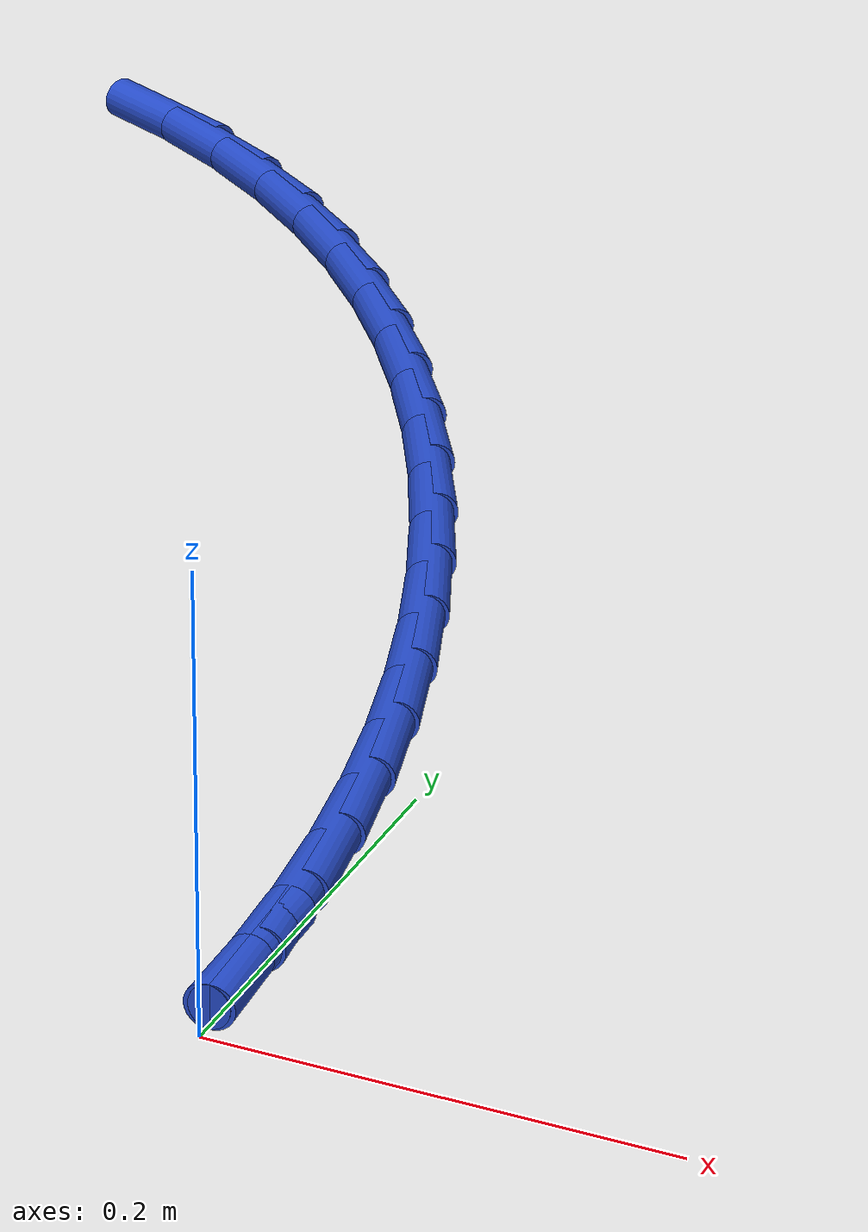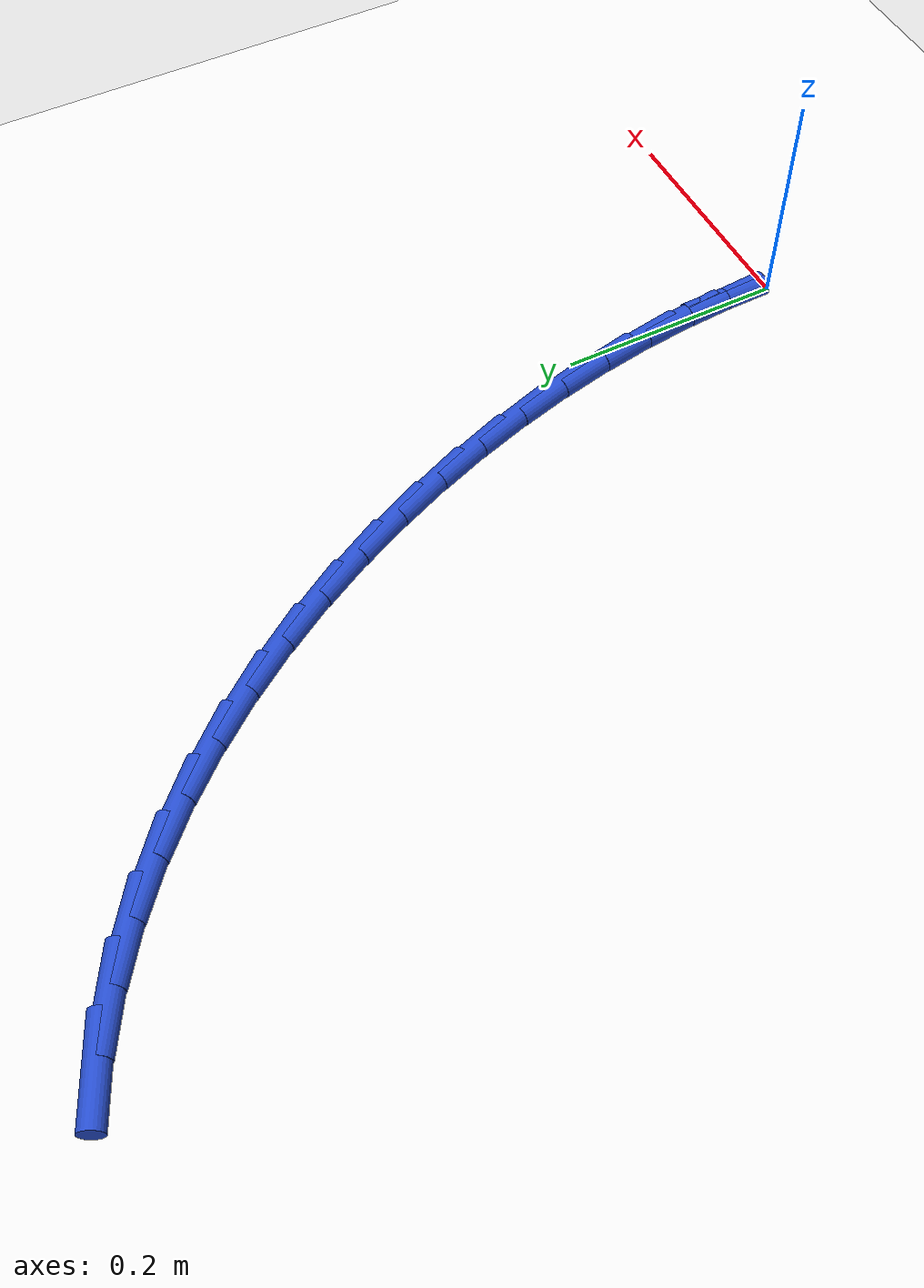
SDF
<sdf version="1.6">
 <world name="default">
  <model name="ground_plane">
   <static>1</static>
   <link name="link">
    <collision name="collision">
     <geometry><plane><normal>0 0 1</normal><size>100 100</size></plane></geometry>
     <surface><friction><ode><mu>100</mu><mu2>50</mu2></ode></friction></surface>
    </collision>
    <visual name="visual">
     <cast_shadows>0</cast_shadows>
     <geometry><plane><normal>0 0 1</normal><size>100 100</size></plane></geometry>
     <material>
      <script><uri>file://media/materials/scripts/gazebo.material</uri><name>Gazebo/WhiteGlow</name></script>
     </material>
    </visual>
   </link>
  </model>
  <model name="line">
   <link name="link_1">
    <pose>-0.0008562477940501431 0.04630962828117616 0.01 0 1.57 -1.5026158189526297</pose>
    <collision name="collision">
     <geometry><cylinder><radius>0.01</radius><length>0.08</length></cylinder></geometry>
    </collision>
    <visual name="visual">
     <material>
      <script><name>Gazebo/Blue</name><uri>file://media/materials/scripts/gazebo.material</uri></script>
     </material>
     <geometry><cylinder><radius>0.01</radius><length>0.08</length></cylinder></geometry>
    </visual>
   </link>
   <link name="link_2">
    <pose>-0.004022852722941298 0.09268207059834314 0.01 0 1.57 -1.453713289861988</pose>
    <collision name="collision">
     <geometry><cylinder><radius>0.01</radius><length>0.08</length></cylinder></geometry>
    </collision>
    <visual name="visual">
     <material>
      <script><name>Gazebo/Blue</name><uri>file://media/materials/scripts/gazebo.material</uri></script>
     </material>
     <geometry><cylinder><radius>0.01</radius><length>0.08</length></cylinder></geometry>
    </visual>
   </link>
   <link name="link_3">
    <pose>-0.009475367597711448 0.13903871682253485 0.01 0 1.57 -1.4055718458695168</pose>
    <collision name="collision">
     <geometry><cylinder><radius>0.01</radius><length>0.08</length></cylinder></geometry>
    </collision>
    <visual name="visual">
     <material>
      <script><name>Gazebo/Blue</name><uri>file://media/materials/scripts/gazebo.material</uri></script>
     </material>
     <geometry><cylinder><radius>0.01</radius><length>0.08</length></cylinder></geometry>
    </visual>
   </link>
   <link name="link_4">
    <pose>-0.017189345229398585 0.18530095682478506 0.01 0 1.57 -1.3581532531895133</pose>
    <collision name="collision">
     <geometry><cylinder><radius>0.01</radius><length>0.08</length></cylinder></geometry>
    </collision>
    <visual name="visual">
     <material>
      <script><name>Gazebo/Blue</name><uri>file://media/materials/scripts/gazebo.material</uri></script>
     </material>
     <geometry><cylinder><radius>0.01</radius><length>0.08</length></cylinder></geometry>
    </visual>
   </link>
   <link name="link_5">
    <pose>-0.027140338429040692 0.23139018047612792 0.01 0 1.57 -1.3114122756941347</pose>
    <collision name="collision">
     <geometry><cylinder><radius>0.01</radius><length>0.08</length></cylinder></geometry>
    </collision>
    <visual name="visual">
     <material>
      <script><name>Gazebo/Blue</name><uri>file://media/materials/scripts/gazebo.material</uri></script>
     </material>
     <geometry><cylinder><radius>0.01</radius><length>0.08</length></cylinder></geometry>
    </visual>
   </link>
   <link name="link_6">
    <pose>-0.039303900007675786 0.27722777764759726 0.01 0 1.57 -1.2652984080838954</pose>
    <collision name="collision">
     <geometry><cylinder><radius>0.01</radius><length>0.08</length></cylinder></geometry>
    </collision>
    <visual name="visual">
     <material>
      <script><name>Gazebo/Blue</name><uri>file://media/materials/scripts/gazebo.material</uri></script>
     </material>
     <geometry><cylinder><radius>0.01</radius><length>0.08</length></cylinder></geometry>
    </visual>
   </link>
   <link name="link_7">
    <pose>-0.053655582776341845 0.32273513821022715 0.01 0 1.57 -1.2197574620672487</pose>
    <collision name="collision">
     <geometry><cylinder><radius>0.01</radius><length>0.08</length></cylinder></geometry>
    </collision>
    <visual name="visual">
     <material>
      <script><name>Gazebo/Blue</name><uri>file://media/materials/scripts/gazebo.material</uri></script>
     </material>
     <geometry><cylinder><radius>0.01</radius><length>0.08</length></cylinder></geometry>
    </visual>
   </link>
   <link name="link_8">
    <pose>-0.0701709395460769 0.36783365203505153 0.01 0 1.57 -1.1746021792192476</pose>
    <collision name="collision">
     <geometry><cylinder><radius>0.01</radius><length>0.08</length></cylinder></geometry>
    </collision>
    <visual name="visual">
     <material>
      <script><name>Gazebo/Blue</name><uri>file://media/materials/scripts/gazebo.material</uri></script>
     </material>
     <geometry><cylinder><radius>0.01</radius><length>0.08</length></cylinder></geometry>
    </visual>
   </link>
   <link name="link_9">
    <pose>-0.08882763986999251 0.4124333776462103 0.01 0 1.57 -1.1281457233160899</pose>
    <collision name="collision">
     <geometry><cylinder><radius>0.01</radius><length>0.08</length></cylinder></geometry>
    </collision>
    <visual name="visual">
     <material>
      <script><name>Gazebo/Blue</name><uri>file://media/materials/scripts/gazebo.material</uri></script>
     </material>
     <geometry><cylinder><radius>0.01</radius><length>0.08</length></cylinder></geometry>
    </visual>
   </link>
   <link name="link_10">
    <pose>-0.10962780403747245 0.4563134838491791 0.01 0 1.57 -1.078931156878199</pose>
    <collision name="collision">
     <geometry><cylinder><radius>0.01</radius><length>0.08</length></cylinder></geometry>
    </collision>
    <visual name="visual">
     <material>
      <script><name>Gazebo/Blue</name><uri>file://media/materials/scripts/gazebo.material</uri></script>
     </material>
     <geometry><cylinder><radius>0.01</radius><length>0.08</length></cylinder></geometry>
    </visual>
   </link>
   <link name="link_11">
    <pose>-0.1325892530624173 0.4991690903070276 0.01 0 1.57 -1.0263862099845946</pose>
    <collision name="collision">
     <geometry><cylinder><radius>0.01</radius><length>0.08</length></cylinder></geometry>
    </collision>
    <visual name="visual">
     <material>
      <script><name>Gazebo/Blue</name><uri>file://media/materials/scripts/gazebo.material</uri></script>
     </material>
     <geometry><cylinder><radius>0.01</radius><length>0.08</length></cylinder></geometry>
    </visual>
   </link>
   <link name="link_12">
    <pose>-0.15773006633531272 0.540693933540897 0.01 0 1.57 -0.9699509158918701</pose>
    <collision name="collision">
     <geometry><cylinder><radius>0.01</radius><length>0.08</length></cylinder></geometry>
    </collision>
    <visual name="visual">
     <material>
      <script><name>Gazebo/Blue</name><uri>file://media/materials/scripts/gazebo.material</uri></script>
     </material>
     <geometry><cylinder><radius>0.01</radius><length>0.08</length></cylinder></geometry>
    </visual>
   </link>
   <link name="link_13">
    <pose>-0.1850683232466442 0.5805817500719277 0.01 0 1.57 -0.9090741819365421</pose>
    <collision name="collision">
     <geometry><cylinder><radius>0.01</radius><length>0.08</length></cylinder></geometry>
    </collision>
    <visual name="visual">
     <material>
      <script><name>Gazebo/Blue</name><uri>file://media/materials/scripts/gazebo.material</uri></script>
     </material>
     <geometry><cylinder><radius>0.01</radius><length>0.08</length></cylinder></geometry>
    </visual>
   </link>
   <link name="link_14">
    <pose>-0.21462210318689756 0.6185262764212612 0.01 0 1.57 -0.843238937741024</pose>
    <collision name="collision">
     <geometry><cylinder><radius>0.01</radius><length>0.08</length></cylinder></geometry>
    </collision>
    <visual name="visual">
     <material>
      <script><name>Gazebo/Blue</name><uri>file://media/materials/scripts/gazebo.material</uri></script>
     </material>
     <geometry><cylinder><radius>0.01</radius><length>0.08</length></cylinder></geometry>
    </visual>
   </link>
   <link name="link_15">
    <pose>-0.24640948554655828 0.6542212491100381 0.01 0 1.57 -0.7720031255314951</pose>
    <collision name="collision">
     <geometry><cylinder><radius>0.01</radius><length>0.08</length></cylinder></geometry>
    </collision>
    <visual name="visual">
     <material>
      <script><name>Gazebo/Blue</name><uri>file://media/materials/scripts/gazebo.material</uri></script>
     </material>
     <geometry><cylinder><radius>0.01</radius><length>0.08</length></cylinder></geometry>
    </visual>
   </link>
   <link name="link_16">
    <pose>-0.2804485497161122 0.6873604046593995 0.01 0 1.57 -0.6950587270388701</pose>
    <collision name="collision">
     <geometry><cylinder><radius>0.01</radius><length>0.08</length></cylinder></geometry>
    </collision>
    <visual name="visual">
     <material>
      <script><name>Gazebo/Blue</name><uri>file://media/materials/scripts/gazebo.material</uri></script>
     </material>
     <geometry><cylinder><radius>0.01</radius><length>0.08</length></cylinder></geometry>
    </visual>
   </link>
   <link name="link_17">
    <pose>-0.31675737508604485 0.7176374795904863 0.01 0 1.57 -0.6123076943201725</pose>
    <collision name="collision">
     <geometry><cylinder><radius>0.01</radius><length>0.08</length></cylinder></geometry>
    </collision>
    <visual name="visual">
     <material>
      <script><name>Gazebo/Blue</name><uri>file://media/materials/scripts/gazebo.material</uri></script>
     </material>
     <geometry><cylinder><radius>0.01</radius><length>0.08</length></cylinder></geometry>
    </visual>
   </link>
   <link name="link_18">
    <pose>-0.3553540410468418 0.7447462104244391 0.01 0 1.57 -0.5239471722190218</pose>
    <collision name="collision">
     <geometry><cylinder><radius>0.01</radius><length>0.08</length></cylinder></geometry>
    </collision>
    <visual name="visual">
     <material>
      <script><name>Gazebo/Blue</name><uri>file://media/materials/scripts/gazebo.material</uri></script>
     </material>
     <geometry><cylinder><radius>0.01</radius><length>0.08</length></cylinder></geometry>
    </visual>
   </link>
   <link name="link_19">
    <pose>-0.396256626988989 0.7683803336823997 0.01 0 1.57 -0.43117568816066637</pose>
    <collision name="collision">
     <geometry><cylinder><radius>0.01</radius><length>0.08</length></cylinder></geometry>
    </collision>
    <visual name="visual">
     <material>
      <script><name>Gazebo/Blue</name><uri>file://media/materials/scripts/gazebo.material</uri></script>
     </material>
     <geometry><cylinder><radius>0.01</radius><length>0.08</length></cylinder></geometry>
    </visual>
   </link>
   <link name="link_161">
    <pose>-0.0008732444903791423 0.04632660276330407 0.01 0 1.57 -1.5519488172567097</pose>
    <collision name="collision">
     <geometry><cylinder><radius>0.01</radius><length>0.08</length></cylinder></geometry>
    </collision>
    <visual name="visual">
     <material>
      <script><name>Gazebo/Blue</name><uri>file://media/materials/scripts/gazebo.material</uri></script>
     </material>
     <geometry><cylinder><radius>0.01</radius><length>0.08</length></cylinder></geometry>
    </visual>
   </link>
  </model>
 </world>
</sdf>
